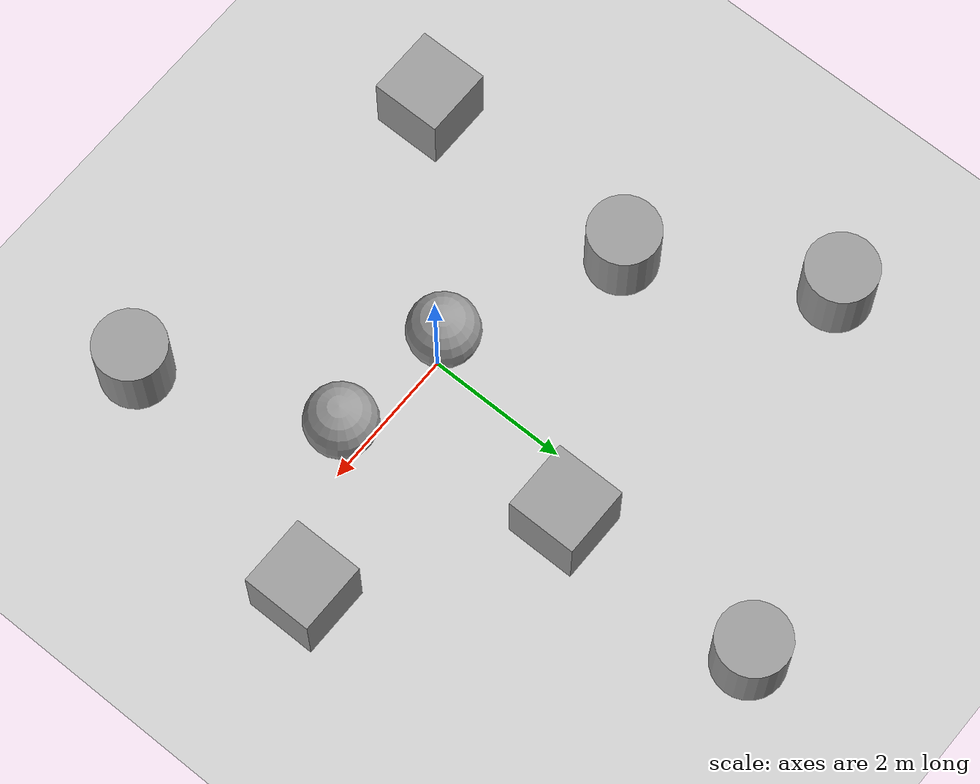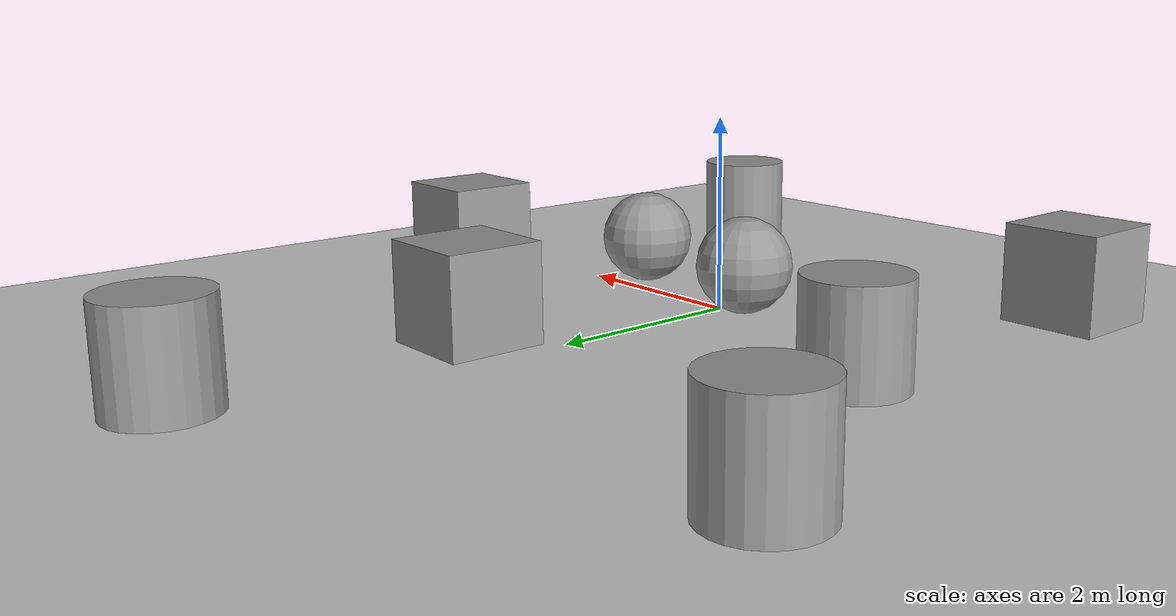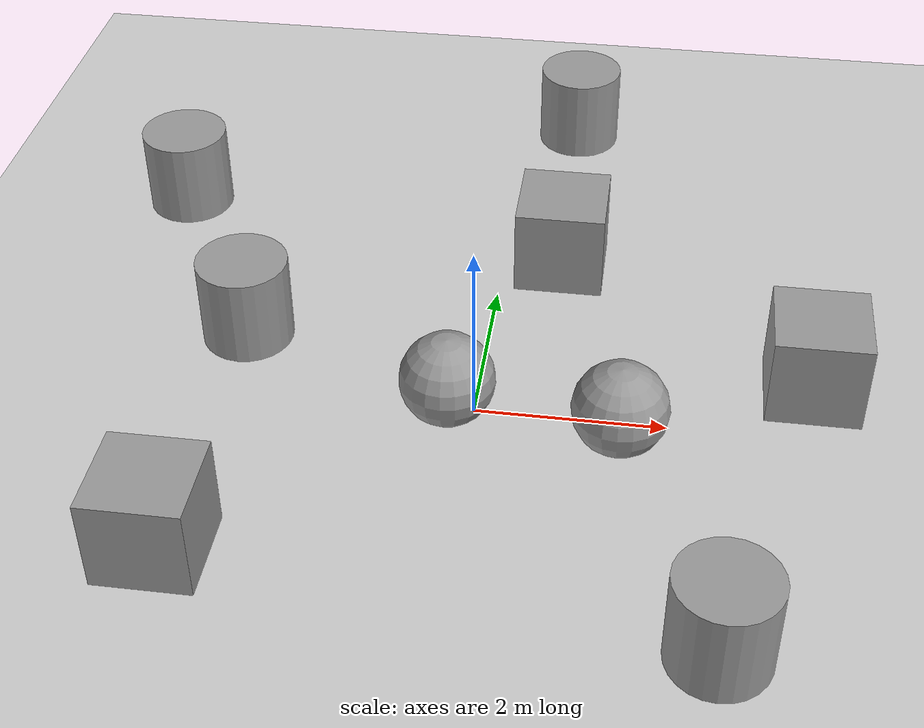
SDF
<sdf version="1.7">
 <world name="default">
  <light name="sun" type="directional">
   <pose>0 0 10 0 -0 0</pose>
   <diffuse>0.8 0.8 0.8 1</diffuse>
   <specular>0.2 0.2 0.2 1</specular>
   <attenuation>
    <range>1000</range>
    <constant>0.9</constant>
    <linear>0.01</linear>
    <quadratic>0.001</quadratic>
   </attenuation>
   <direction>-0.5 0.1 -0.9</direction>
   <spot><inner_angle>0</inner_angle><outer_angle>0</outer_angle><falloff>0</falloff></spot>
  </light>
  <model name="ground_plane">
   <static>1</static>
   <link name="link">
    <collision name="collision">
     <geometry><plane><normal>0 0 1</normal><size>100 100</size></plane></geometry>
     <surface>
      <contact><collide_bitmask>65535</collide_bitmask></contact>
      <friction><ode><mu>100</mu><mu2>50</mu2></ode></friction>
     </surface>
    </collision>
    <visual name="visual">
     <cast_shadows>0</cast_shadows>
     <geometry><plane><normal>0 0 1</normal><size>100 100</size></plane></geometry>
     <material>
      <script><uri>file://media/materials/scripts/gazebo.material</uri><name>Gazebo/Grey</name></script>
     </material>
    </visual>
   </link>
  </model>
  <gravity>0 0 -9.8</gravity>
  <magnetic_field>6e-06 2.3e-05 -4.2e-05</magnetic_field>
  <atmosphere type="adiabatic"/>
  <physics type="ode">
   <max_step_size>0.001</max_step_size>
   <real_time_factor>1</real_time_factor>
   <real_time_update_rate>1000</real_time_update_rate>
  </physics>
  <scene><ambient>0.4 0.4 0.4 1</ambient><background>0.7 0.7 0.7 1</background><shadows>1</shadows></scene>
  <spherical_coordinates>
   <surface_model>EARTH_WGS84</surface_model>
   <latitude_deg>0</latitude_deg>
   <longitude_deg>0</longitude_deg>
   <elevation>0</elevation>
   <heading_deg>0</heading_deg>
  </spherical_coordinates>
  <model name="unit_cylinder">
   <pose>0.63037 5.56184 0.499997 3e-06 -4e-06 0</pose>
   <link name="link">
    <inertial>
     <mass>1</mass>
     <inertia><ixx>0.145833</ixx><ixy>0</ixy><ixz>0</ixz><iyy>0.145833</iyy><iyz>0</iyz><izz>0.125</izz></inertia>
    </inertial>
    <collision name="collision">
     <geometry><cylinder><radius>0.5</radius><length>1</length></cylinder></geometry>
    </collision>
    <visual name="visual">
     <geometry><cylinder><radius>0.5</radius><length>1</length></cylinder></geometry>
     <material>
      <script><name>Gazebo/Grey</name><uri>file://media/materials/scripts/gazebo.material</uri></script>
     </material>
    </visual>
   </link>
  </model>
  <model name="unit_sphere">
   <pose>1.51861 -0.321557 0.5 0 -0 0</pose>
   <link name="link">
    <inertial>
     <mass>1</mass>
     <inertia><ixx>0.1</ixx><ixy>0</ixy><ixz>0</ixz><iyy>0.1</iyy><iyz>0</iyz><izz>0.1</izz></inertia>
    </inertial>
    <collision name="collision"><geometry><sphere><radius>0.5</radius></sphere></geometry></collision>
    <visual name="visual">
     <geometry><sphere><radius>0.5</radius></sphere></geometry>
     <material>
      <script><name>Gazebo/Grey</name><uri>file://media/materials/scripts/gazebo.material</uri></script>
     </material>
    </visual>
   </link>
  </model>
  <model name="unit_box">
   <pose>-2.69937 -2.34476 0.499995 0 1e-05 0</pose>
   <link name="link">
    <inertial>
     <mass>1</mass>
     <inertia>
      <ixx>0.166667</ixx>
      <ixy>0</ixy>
      <ixz>0</ixz>
      <iyy>0.166667</iyy>
      <iyz>0</iyz>
      <izz>0.166667</izz>
     </inertia>
    </inertial>
    <collision name="collision"><geometry><box><size>1 1 1</size></box></geometry></collision>
    <visual name="visual">
     <geometry><box><size>1 1 1</size></box></geometry>
     <material>
      <script><name>Gazebo/Grey</name><uri>file://media/materials/scripts/gazebo.material</uri></script>
     </material>
    </visual>
   </link>
  </model>
  <model name="unit_sphere_0">
   <pose>-0.2614 -0.102402 0.5 0 -0 0</pose>
   <link name="link">
    <inertial>
     <mass>1</mass>
     <inertia><ixx>0.1</ixx><ixy>0</ixy><ixz>0</ixz><iyy>0.1</iyy><iyz>0</iyz><izz>0.1</izz></inertia>
    </inertial>
    <collision name="collision"><geometry><sphere><radius>0.5</radius></sphere></geometry></collision>
    <visual name="visual">
     <geometry><sphere><radius>0.5</radius></sphere></geometry>
     <material>
      <script><name>Gazebo/Grey</name><uri>file://media/materials/scripts/gazebo.material</uri></script>
     </material>
    </visual>
   </link>
  </model>
  <model name="unit_box_0">
   <pose>3.4933 0.753186 0.499995 -1e-05 -0 -0</pose>
   <link name="link">
    <inertial>
     <mass>1</mass>
     <inertia>
      <ixx>0.166667</ixx>
      <ixy>0</ixy>
      <ixz>0</ixz>
      <iyy>0.166667</iyy>
      <iyz>0</iyz>
      <izz>0.166667</izz>
     </inertia>
    </inertial>
    <collision name="collision"><geometry><box><size>1 1 1</size></box></geometry></collision>
    <visual name="visual">
     <geometry><box><size>1 1 1</size></box></geometry>
     <material>
      <script><name>Gazebo/Grey</name><uri>file://media/materials/scripts/gazebo.material</uri></script>
     </material>
    </visual>
   </link>
  </model>
  <model name="unit_cylinder_0">
   <pose>-3.99723 3.42913 0.499992 -3e-06 -4e-06 -0</pose>
   <link name="link">
    <inertial>
     <mass>1</mass>
     <inertia><ixx>0.145833</ixx><ixy>0</ixy><ixz>0</ixz><iyy>0.145833</iyy><iyz>0</iyz><izz>0.125</izz></inertia>
    </inertial>
    <collision name="collision">
     <geometry><cylinder><radius>0.5</radius><length>1</length></cylinder></geometry>
    </collision>
    <visual name="visual">
     <geometry><cylinder><radius>0.5</radius><length>1</length></cylinder></geometry>
     <material>
      <script><name>Gazebo/Grey</name><uri>file://media/materials/scripts/gazebo.material</uri></script>
     </material>
    </visual>
   </link>
  </model>
  <model name="unit_cylinder_1">
   <pose>2.56117 -2.91597 0.499993 -3e-06 -3e-06 0</pose>
   <link name="link">
    <inertial>
     <mass>1</mass>
     <inertia><ixx>0.145833</ixx><ixy>0</ixy><ixz>0</ixz><iyy>0.145833</iyy><iyz>0</iyz><izz>0.125</izz></inertia>
    </inertial>
    <collision name="collision">
     <geometry><cylinder><radius>0.5</radius><length>1</length></cylinder></geometry>
    </collision>
    <visual name="visual">
     <geometry><cylinder><radius>0.5</radius><length>1</length></cylinder></geometry>
     <material>
      <script><name>Gazebo/Grey</name><uri>file://media/materials/scripts/gazebo.material</uri></script>
     </material>
    </visual>
   </link>
  </model>
  <model name="unit_box_1">
   <pose>0.668133 2.64304 0.499995 0 1e-05 0</pose>
   <link name="link">
    <inertial>
     <mass>1</mass>
     <inertia>
      <ixx>0.166667</ixx>
      <ixy>0</ixy>
      <ixz>0</ixz>
      <iyy>0.166667</iyy>
      <iyz>0</iyz>
      <izz>0.166667</izz>
     </inertia>
    </inertial>
    <collision name="collision"><geometry><box><size>1 1 1</size></box></geometry></collision>
    <visual name="visual">
     <geometry><box><size>1 1 1</size></box></geometry>
     <material>
      <script><name>Gazebo/Grey</name><uri>file://media/materials/scripts/gazebo.material</uri></script>
     </material>
    </visual>
   </link>
  </model>
  <model name="unit_cylinder_2">
   <pose>-2.64546 0.947517 0.499993 -3e-06 -4e-06 -0</pose>
   <link name="link">
    <inertial>
     <mass>1</mass>
     <inertia><ixx>0.145833</ixx><ixy>0</ixy><ixz>0</ixz><iyy>0.145833</iyy><iyz>0</iyz><izz>0.125</izz></inertia>
    </inertial>
    <collision name="collision">
     <geometry><cylinder><radius>0.5</radius><length>1</length></cylinder></geometry>
    </collision>
    <visual name="visual">
     <geometry><cylinder><radius>0.5</radius><length>1</length></cylinder></geometry>
     <material>
      <script><name>Gazebo/Grey</name><uri>file://media/materials/scripts/gazebo.material</uri></script>
     </material>
    </visual>
   </link>
  </model>
 </world>
</sdf>
